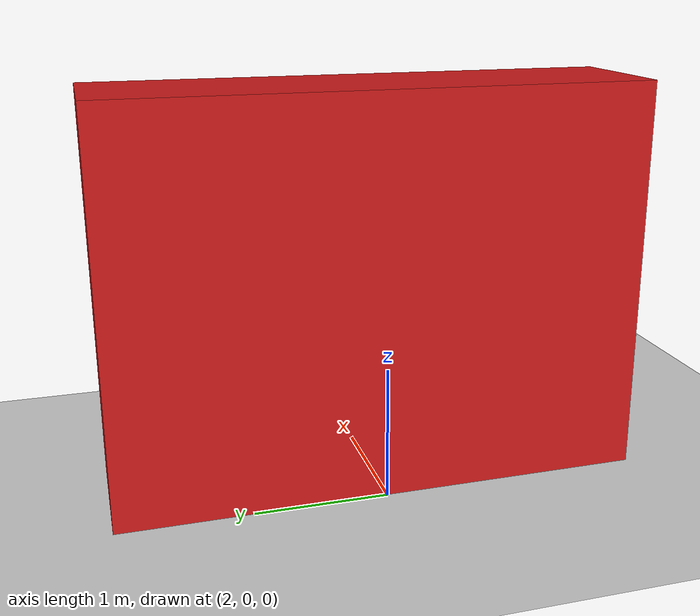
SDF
<?xml version="1.0" ?>
<sdf version="1.6">
  <world name="default">

    <!-- Физика -->
    <plugin filename="gz-sim-physics-system"
      name="gz::sim::systems::Physics">
    </plugin>

    <!-- Управление -->
    <plugin filename="gz-sim-user-commands-system"
      name="gz::sim::systems::UserCommands">
    </plugin>

    <!-- Сцена -->
    <plugin filename="gz-sim-scene-broadcaster-system"
      name="gz::sim::systems::SceneBroadcaster">
    </plugin>

    <plugin filename="gz-sim-imu-system"
        name="gz::sim::systems::Imu">
    </plugin>

    <!-- !!! СИСТЕМА СЕНСОРОВ !!! -->
    <plugin filename="gz-sim-sensors-system"
      name="gz::sim::systems::Sensors">
      <render_engine>ogre2</render_engine>
    </plugin>

    <!-- Солнце -->
    <include>
      <uri>
        https://fuel.gazebosim.org/1.0/OpenRobotics/models/Sun
      </uri>
    </include>

    <!-- Пол -->
    <include>
      <uri>
        https://fuel.gazebosim.org/1.0/OpenRobotics/models/Ground Plane
      </uri>
    </include>

    <!-- === ДОБАВЛЕННАЯ КОРОБКА === -->
    <model name="huge_obstacle">
      <!-- Позиция: x=2.5м, y=0, z=1.5м (центр) -->
      <pose>2.5 0 1.5 0 0 0</pose>
      <static>true</static> <!-- Не падает и не двигается -->
      <link name="link">
        <collision name="collision">
          <geometry>
            <!-- Размер: 1м глубина, 4м ширина, 3м высота -->
            <box>
              <size>1 4 3</size>
            </box>
          </geometry>
        </collision>
        <visual name="visual">
          <geometry>
            <box>
              <size>1 4 3</size>
            </box>
          </geometry>
          <material>
            <!-- Красный цвет для заметности -->
            <ambient>0.8 0.1 0.1 1</ambient>
            <diffuse>0.8 0.1 0.1 1</diffuse>
            <specular>0.8 0.1 0.1 1</specular>
          </material>
        </visual>
      </link>
    </model>

  </world>
</sdf>
